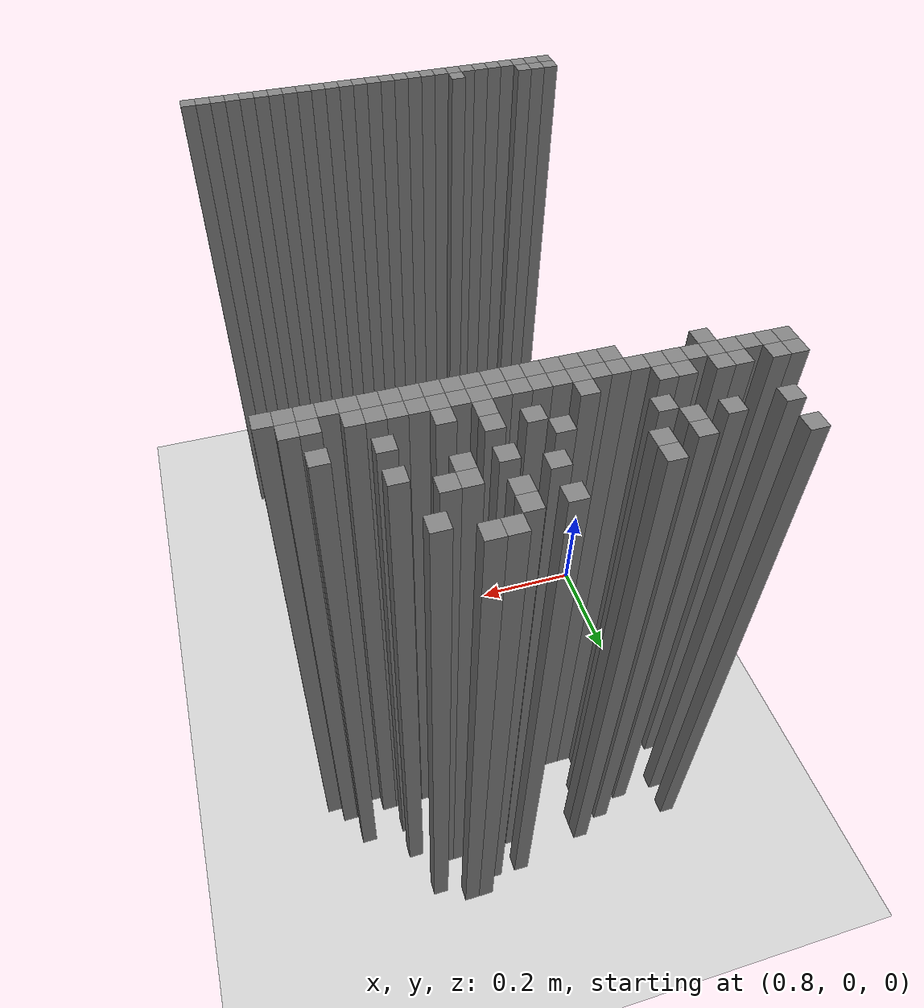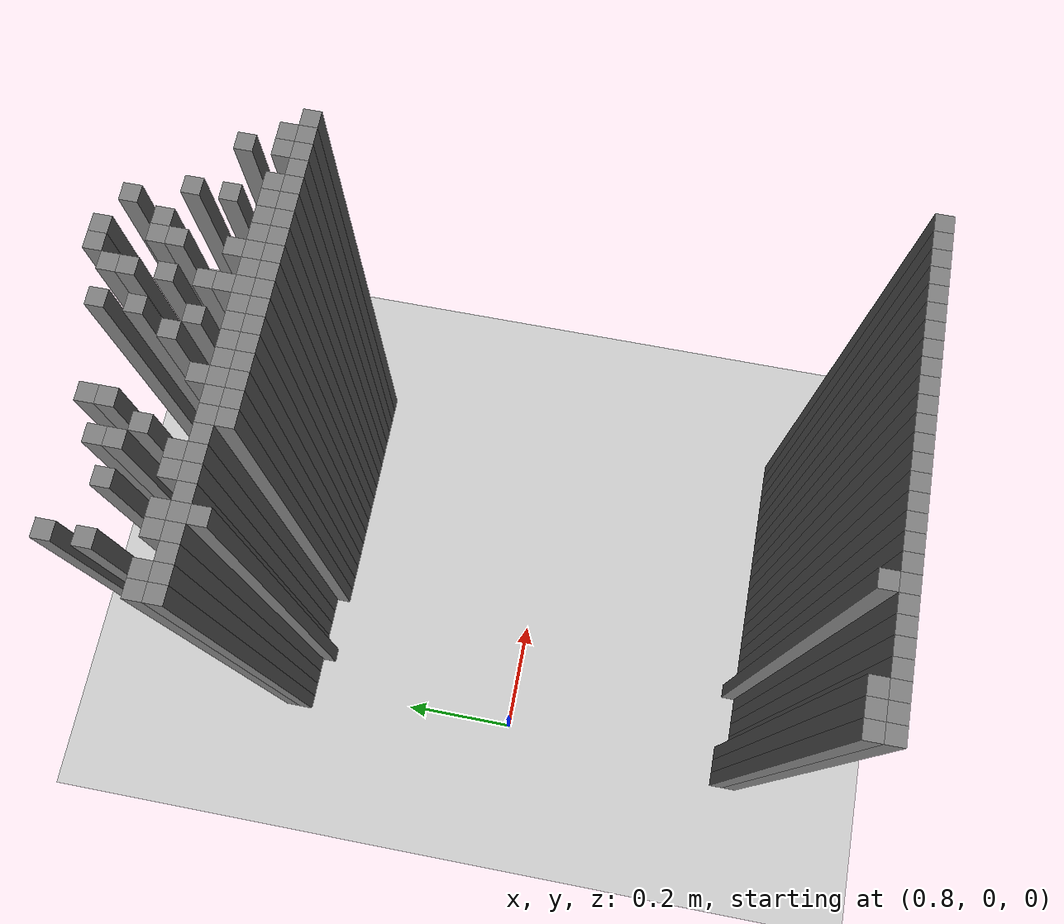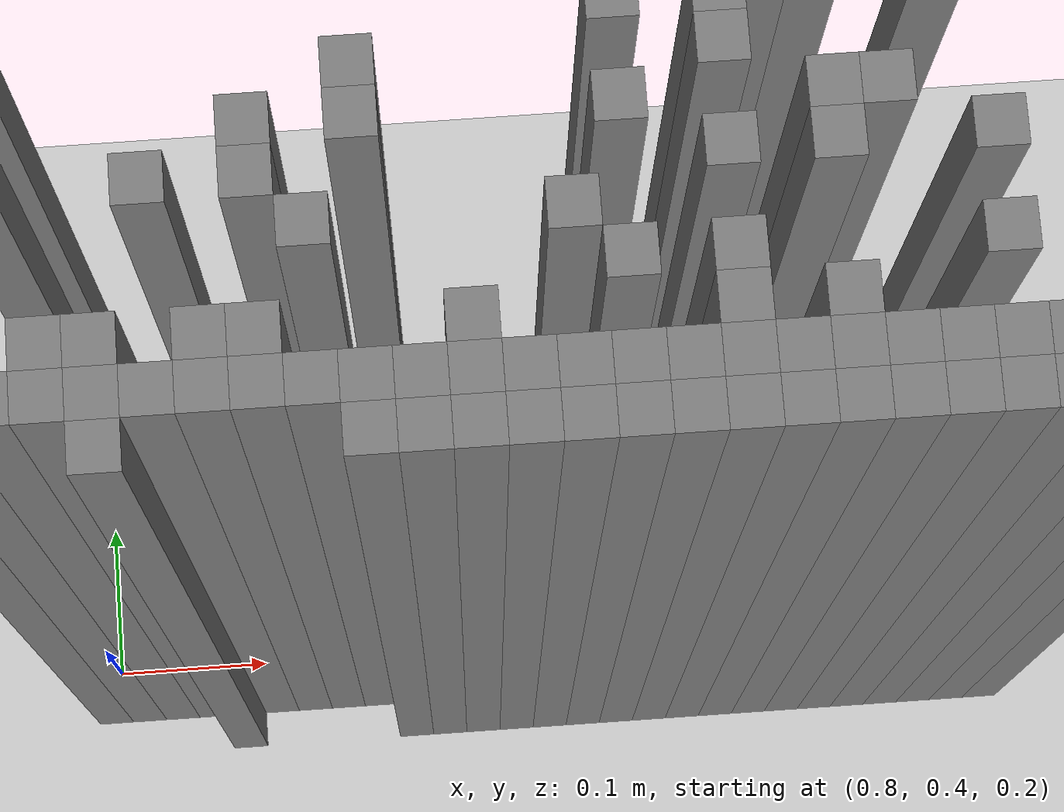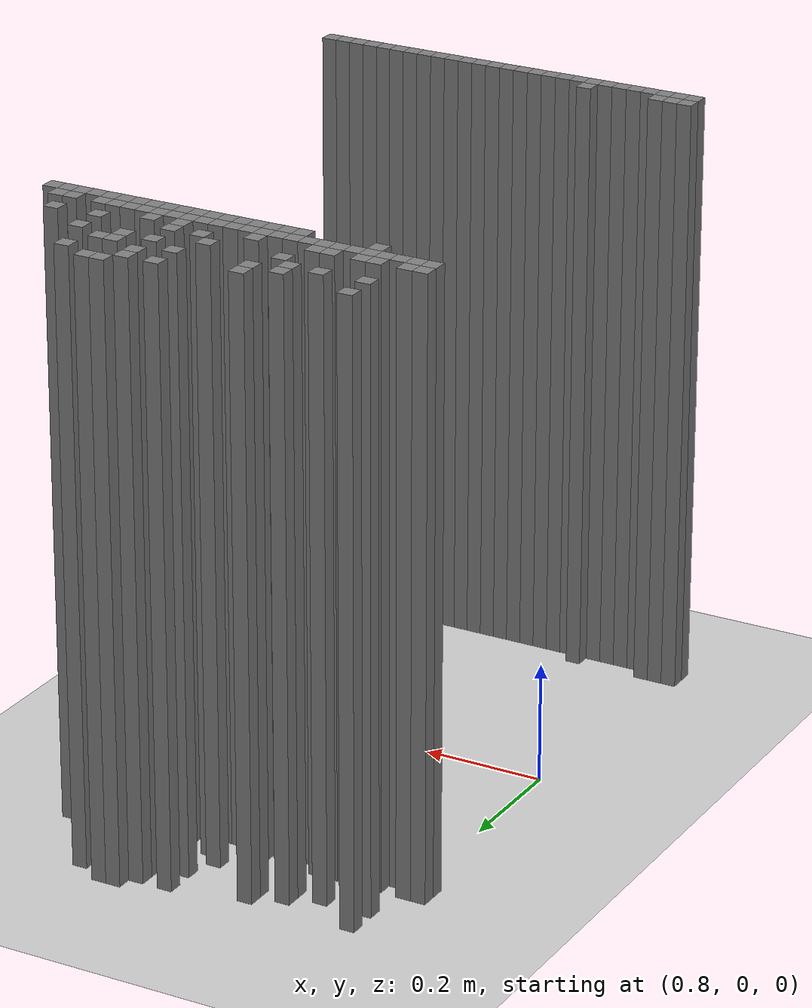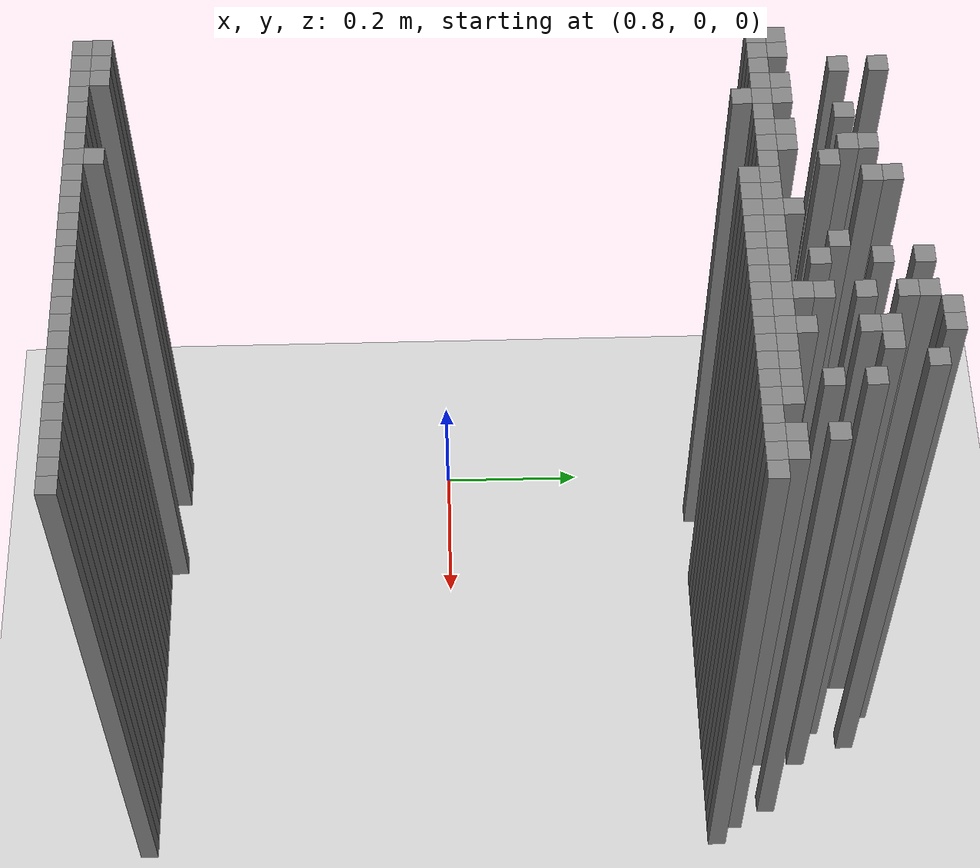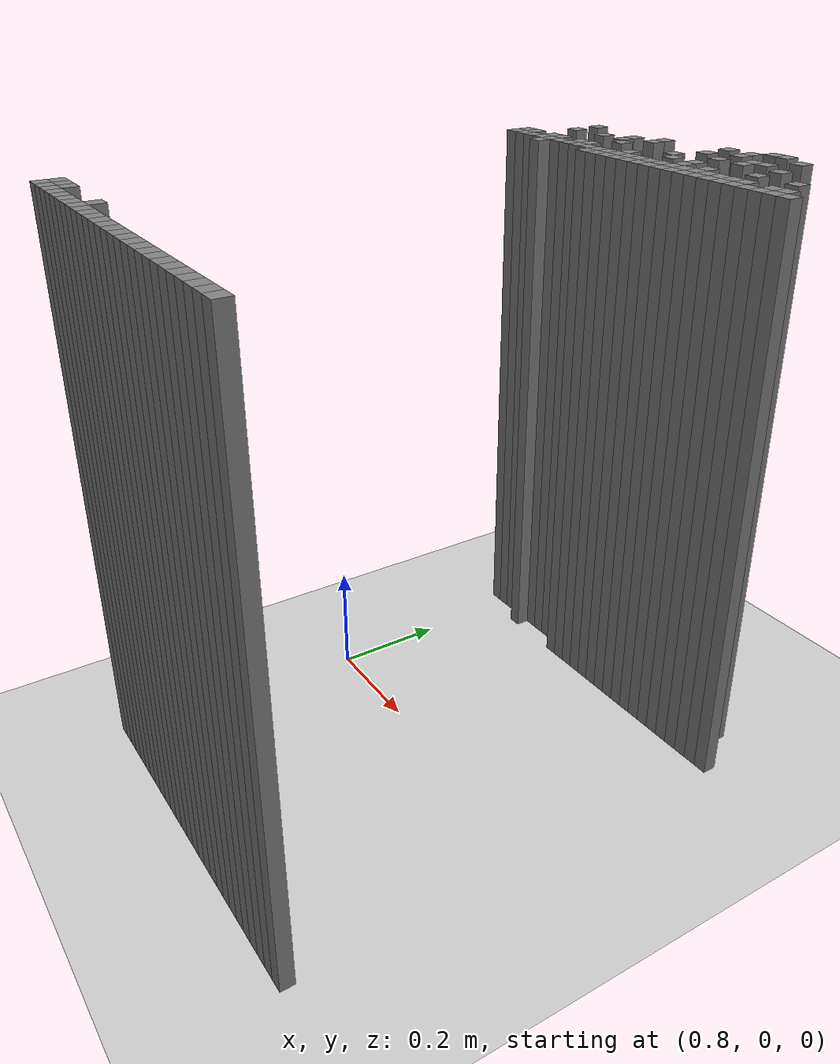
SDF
<sdf version="1.6">
 <world name="map_world">
  <include><uri>model://ground_plane</uri></include>
  <include><uri>model://sun</uri></include>
  <model name="obs_141_25">
   <static>true</static>
   <link name="link">
    <collision name="collision"><geometry><box><size>0.025 0.025 1.0</size></box></geometry></collision>
    <visual name="visual">
     <geometry><box><size>0.025 0.025 1.0</size></box></geometry>
     <material><ambient>0.5 0.5 0.5 1</ambient></material>
    </visual>
   </link>
   <pose>1.1987650000000003 0.6059290000000002 0.5 0 0 0</pose>
  </model>
  <model name="obs_142_25">
   <static>true</static>
   <link name="link">
    <collision name="collision"><geometry><box><size>0.025 0.025 1.0</size></box></geometry></collision>
    <visual name="visual">
     <geometry><box><size>0.025 0.025 1.0</size></box></geometry>
     <material><ambient>0.5 0.5 0.5 1</ambient></material>
    </visual>
   </link>
   <pose>1.2237650000000002 0.6059290000000002 0.5 0 0 0</pose>
  </model>
  <model name="obs_138_26">
   <static>true</static>
   <link name="link">
    <collision name="collision"><geometry><box><size>0.025 0.025 1.0</size></box></geometry></collision>
    <visual name="visual">
     <geometry><box><size>0.025 0.025 1.0</size></box></geometry>
     <material><ambient>0.5 0.5 0.5 1</ambient></material>
    </visual>
   </link>
   <pose>1.1237650000000001 0.5809290000000003 0.5 0 0 0</pose>
  </model>
  <model name="obs_140_26">
   <static>true</static>
   <link name="link">
    <collision name="collision"><geometry><box><size>0.025 0.025 1.0</size></box></geometry></collision>
    <visual name="visual">
     <geometry><box><size>0.025 0.025 1.0</size></box></geometry>
     <material><ambient>0.5 0.5 0.5 1</ambient></material>
    </visual>
   </link>
   <pose>1.173765 0.5809290000000003 0.5 0 0 0</pose>
  </model>
  <model name="obs_144_26">
   <static>true</static>
   <link name="link">
    <collision name="collision"><geometry><box><size>0.025 0.025 1.0</size></box></geometry></collision>
    <visual name="visual">
     <geometry><box><size>0.025 0.025 1.0</size></box></geometry>
     <material><ambient>0.5 0.5 0.5 1</ambient></material>
    </visual>
   </link>
   <pose>1.273765 0.5809290000000003 0.5 0 0 0</pose>
  </model>
  <model name="obs_126_27">
   <static>true</static>
   <link name="link">
    <collision name="collision"><geometry><box><size>0.025 0.025 1.0</size></box></geometry></collision>
    <visual name="visual">
     <geometry><box><size>0.025 0.025 1.0</size></box></geometry>
     <material><ambient>0.5 0.5 0.5 1</ambient></material>
    </visual>
   </link>
   <pose>0.8237650000000003 0.5559290000000003 0.5 0 0 0</pose>
  </model>
  <model name="obs_133_27">
   <static>true</static>
   <link name="link">
    <collision name="collision"><geometry><box><size>0.025 0.025 1.0</size></box></geometry></collision>
    <visual name="visual">
     <geometry><box><size>0.025 0.025 1.0</size></box></geometry>
     <material><ambient>0.5 0.5 0.5 1</ambient></material>
    </visual>
   </link>
   <pose>0.9987650000000001 0.5559290000000003 0.5 0 0 0</pose>
  </model>
  <model name="obs_140_27">
   <static>true</static>
   <link name="link">
    <collision name="collision"><geometry><box><size>0.025 0.025 1.0</size></box></geometry></collision>
    <visual name="visual">
     <geometry><box><size>0.025 0.025 1.0</size></box></geometry>
     <material><ambient>0.5 0.5 0.5 1</ambient></material>
    </visual>
   </link>
   <pose>1.173765 0.5559290000000003 0.5 0 0 0</pose>
  </model>
  <model name="obs_131_28">
   <static>true</static>
   <link name="link">
    <collision name="collision"><geometry><box><size>0.025 0.025 1.0</size></box></geometry></collision>
    <visual name="visual">
     <geometry><box><size>0.025 0.025 1.0</size></box></geometry>
     <material><ambient>0.5 0.5 0.5 1</ambient></material>
    </visual>
   </link>
   <pose>0.9487650000000003 0.5309290000000004 0.5 0 0 0</pose>
  </model>
  <model name="obs_133_28">
   <static>true</static>
   <link name="link">
    <collision name="collision"><geometry><box><size>0.025 0.025 1.0</size></box></geometry></collision>
    <visual name="visual">
     <geometry><box><size>0.025 0.025 1.0</size></box></geometry>
     <material><ambient>0.5 0.5 0.5 1</ambient></material>
    </visual>
   </link>
   <pose>0.9987650000000001 0.5309290000000004 0.5 0 0 0</pose>
  </model>
  <model name="obs_138_28">
   <static>true</static>
   <link name="link">
    <collision name="collision"><geometry><box><size>0.025 0.025 1.0</size></box></geometry></collision>
    <visual name="visual">
     <geometry><box><size>0.025 0.025 1.0</size></box></geometry>
     <material><ambient>0.5 0.5 0.5 1</ambient></material>
    </visual>
   </link>
   <pose>1.1237650000000001 0.5309290000000004 0.5 0 0 0</pose>
  </model>
  <model name="obs_142_28">
   <static>true</static>
   <link name="link">
    <collision name="collision"><geometry><box><size>0.025 0.025 1.0</size></box></geometry></collision>
    <visual name="visual">
     <geometry><box><size>0.025 0.025 1.0</size></box></geometry>
     <material><ambient>0.5 0.5 0.5 1</ambient></material>
    </visual>
   </link>
   <pose>1.2237650000000002 0.5309290000000004 0.5 0 0 0</pose>
  </model>
  <model name="obs_143_28">
   <static>true</static>
   <link name="link">
    <collision name="collision"><geometry><box><size>0.025 0.025 1.0</size></box></geometry></collision>
    <visual name="visual">
     <geometry><box><size>0.025 0.025 1.0</size></box></geometry>
     <material><ambient>0.5 0.5 0.5 1</ambient></material>
    </visual>
   </link>
   <pose>1.2487650000000001 0.5309290000000004 0.5 0 0 0</pose>
  </model>
  <model name="obs_126_29">
   <static>true</static>
   <link name="link">
    <collision name="collision"><geometry><box><size>0.025 0.025 1.0</size></box></geometry></collision>
    <visual name="visual">
     <geometry><box><size>0.025 0.025 1.0</size></box></geometry>
     <material><ambient>0.5 0.5 0.5 1</ambient></material>
    </visual>
   </link>
   <pose>0.8237650000000003 0.5059290000000001 0.5 0 0 0</pose>
  </model>
  <model name="obs_129_29">
   <static>true</static>
   <link name="link">
    <collision name="collision"><geometry><box><size>0.025 0.025 1.0</size></box></geometry></collision>
    <visual name="visual">
     <geometry><box><size>0.025 0.025 1.0</size></box></geometry>
     <material><ambient>0.5 0.5 0.5 1</ambient></material>
    </visual>
   </link>
   <pose>0.898765 0.5059290000000001 0.5 0 0 0</pose>
  </model>
  <model name="obs_131_29">
   <static>true</static>
   <link name="link">
    <collision name="collision"><geometry><box><size>0.025 0.025 1.0</size></box></geometry></collision>
    <visual name="visual">
     <geometry><box><size>0.025 0.025 1.0</size></box></geometry>
     <material><ambient>0.5 0.5 0.5 1</ambient></material>
    </visual>
   </link>
   <pose>0.9487650000000003 0.5059290000000001 0.5 0 0 0</pose>
  </model>
  <model name="obs_140_29">
   <static>true</static>
   <link name="link">
    <collision name="collision"><geometry><box><size>0.025 0.025 1.0</size></box></geometry></collision>
    <visual name="visual">
     <geometry><box><size>0.025 0.025 1.0</size></box></geometry>
     <material><ambient>0.5 0.5 0.5 1</ambient></material>
    </visual>
   </link>
   <pose>1.173765 0.5059290000000001 0.5 0 0 0</pose>
  </model>
  <model name="obs_142_29">
   <static>true</static>
   <link name="link">
    <collision name="collision"><geometry><box><size>0.025 0.025 1.0</size></box></geometry></collision>
    <visual name="visual">
     <geometry><box><size>0.025 0.025 1.0</size></box></geometry>
     <material><ambient>0.5 0.5 0.5 1</ambient></material>
    </visual>
   </link>
   <pose>1.2237650000000002 0.5059290000000001 0.5 0 0 0</pose>
  </model>
  <model name="obs_145_29">
   <static>true</static>
   <link name="link">
    <collision name="collision"><geometry><box><size>0.025 0.025 1.0</size></box></geometry></collision>
    <visual name="visual">
     <geometry><box><size>0.025 0.025 1.0</size></box></geometry>
     <material><ambient>0.5 0.5 0.5 1</ambient></material>
    </visual>
   </link>
   <pose>1.298765 0.5059290000000001 0.5 0 0 0</pose>
  </model>
  <model name="obs_132_30">
   <static>true</static>
   <link name="link">
    <collision name="collision"><geometry><box><size>0.025 0.025 1.0</size></box></geometry></collision>
    <visual name="visual">
     <geometry><box><size>0.025 0.025 1.0</size></box></geometry>
     <material><ambient>0.5 0.5 0.5 1</ambient></material>
    </visual>
   </link>
   <pose>0.9737650000000002 0.48092900000000016 0.5 0 0 0</pose>
  </model>
  <model name="obs_137_30">
   <static>true</static>
   <link name="link">
    <collision name="collision"><geometry><box><size>0.025 0.025 1.0</size></box></geometry></collision>
    <visual name="visual">
     <geometry><box><size>0.025 0.025 1.0</size></box></geometry>
     <material><ambient>0.5 0.5 0.5 1</ambient></material>
    </visual>
   </link>
   <pose>1.0987650000000002 0.48092900000000016 0.5 0 0 0</pose>
  </model>
  <model name="obs_138_31">
   <static>true</static>
   <link name="link">
    <collision name="collision"><geometry><box><size>0.025 0.025 1.0</size></box></geometry></collision>
    <visual name="visual">
     <geometry><box><size>0.025 0.025 1.0</size></box></geometry>
     <material><ambient>0.5 0.5 0.5 1</ambient></material>
    </visual>
   </link>
   <pose>1.1237650000000001 0.45592900000000025 0.5 0 0 0</pose>
  </model>
  <model name="obs_140_31">
   <static>true</static>
   <link name="link">
    <collision name="collision"><geometry><box><size>0.025 0.025 1.0</size></box></geometry></collision>
    <visual name="visual">
     <geometry><box><size>0.025 0.025 1.0</size></box></geometry>
     <material><ambient>0.5 0.5 0.5 1</ambient></material>
    </visual>
   </link>
   <pose>1.173765 0.45592900000000025 0.5 0 0 0</pose>
  </model>
  <model name="obs_145_31">
   <static>true</static>
   <link name="link">
    <collision name="collision"><geometry><box><size>0.025 0.025 1.0</size></box></geometry></collision>
    <visual name="visual">
     <geometry><box><size>0.025 0.025 1.0</size></box></geometry>
     <material><ambient>0.5 0.5 0.5 1</ambient></material>
    </visual>
   </link>
   <pose>1.298765 0.45592900000000025 0.5 0 0 0</pose>
  </model>
  <model name="obs_148_31">
   <static>true</static>
   <link name="link">
    <collision name="collision"><geometry><box><size>0.025 0.025 1.0</size></box></geometry></collision>
    <visual name="visual">
     <geometry><box><size>0.025 0.025 1.0</size></box></geometry>
     <material><ambient>0.5 0.5 0.5 1</ambient></material>
    </visual>
   </link>
   <pose>1.3737650000000001 0.45592900000000025 0.5 0 0 0</pose>
  </model>
  <model name="obs_124_32">
   <static>true</static>
   <link name="link">
    <collision name="collision"><geometry><box><size>0.025 0.025 1.0</size></box></geometry></collision>
    <visual name="visual">
     <geometry><box><size>0.025 0.025 1.0</size></box></geometry>
     <material><ambient>0.5 0.5 0.5 1</ambient></material>
    </visual>
   </link>
   <pose>0.773765 0.43092900000000034 0.5 0 0 0</pose>
  </model>
  <model name="obs_125_32">
   <static>true</static>
   <link name="link">
    <collision name="collision"><geometry><box><size>0.025 0.025 1.0</size></box></geometry></collision>
    <visual name="visual">
     <geometry><box><size>0.025 0.025 1.0</size></box></geometry>
     <material><ambient>0.5 0.5 0.5 1</ambient></material>
    </visual>
   </link>
   <pose>0.798765 0.43092900000000034 0.5 0 0 0</pose>
  </model>
  <model name="obs_127_32">
   <static>true</static>
   <link name="link">
    <collision name="collision"><geometry><box><size>0.025 0.025 1.0</size></box></geometry></collision>
    <visual name="visual">
     <geometry><box><size>0.025 0.025 1.0</size></box></geometry>
     <material><ambient>0.5 0.5 0.5 1</ambient></material>
    </visual>
   </link>
   <pose>0.8487650000000002 0.43092900000000034 0.5 0 0 0</pose>
  </model>
  <model name="obs_128_32">
   <static>true</static>
   <link name="link">
    <collision name="collision"><geometry><box><size>0.025 0.025 1.0</size></box></geometry></collision>
    <visual name="visual">
     <geometry><box><size>0.025 0.025 1.0</size></box></geometry>
     <material><ambient>0.5 0.5 0.5 1</ambient></material>
    </visual>
   </link>
   <pose>0.8737650000000001 0.43092900000000034 0.5 0 0 0</pose>
  </model>
  <model name="obs_130_32">
   <static>true</static>
   <link name="link">
    <collision name="collision"><geometry><box><size>0.025 0.025 1.0</size></box></geometry></collision>
    <visual name="visual">
     <geometry><box><size>0.025 0.025 1.0</size></box></geometry>
     <material><ambient>0.5 0.5 0.5 1</ambient></material>
    </visual>
   </link>
   <pose>0.923765 0.43092900000000034 0.5 0 0 0</pose>
  </model>
  <model name="obs_131_32">
   <static>true</static>
   <link name="link">
    <collision name="collision"><geometry><box><size>0.025 0.025 1.0</size></box></geometry></collision>
    <visual name="visual">
     <geometry><box><size>0.025 0.025 1.0</size></box></geometry>
     <material><ambient>0.5 0.5 0.5 1</ambient></material>
    </visual>
   </link>
   <pose>0.9487650000000003 0.43092900000000034 0.5 0 0 0</pose>
  </model>
  <model name="obs_135_32">
   <static>true</static>
   <link name="link">
    <collision name="collision"><geometry><box><size>0.025 0.025 1.0</size></box></geometry></collision>
    <visual name="visual">
     <geometry><box><size>0.025 0.025 1.0</size></box></geometry>
     <material><ambient>0.5 0.5 0.5 1</ambient></material>
    </visual>
   </link>
   <pose>1.048765 0.43092900000000034 0.5 0 0 0</pose>
  </model>
  <model name="obs_140_32">
   <static>true</static>
   <link name="link">
    <collision name="collision"><geometry><box><size>0.025 0.025 1.0</size></box></geometry></collision>
    <visual name="visual">
     <geometry><box><size>0.025 0.025 1.0</size></box></geometry>
     <material><ambient>0.5 0.5 0.5 1</ambient></material>
    </visual>
   </link>
   <pose>1.173765 0.43092900000000034 0.5 0 0 0</pose>
  </model>
  <model name="obs_142_32">
   <static>true</static>
   <link name="link">
    <collision name="collision"><geometry><box><size>0.025 0.025 1.0</size></box></geometry></collision>
    <visual name="visual">
     <geometry><box><size>0.025 0.025 1.0</size></box></geometry>
     <material><ambient>0.5 0.5 0.5 1</ambient></material>
    </visual>
   </link>
   <pose>1.2237650000000002 0.43092900000000034 0.5 0 0 0</pose>
  </model>
  <model name="obs_124_33">
   <static>true</static>
   <link name="link">
    <collision name="collision"><geometry><box><size>0.025 0.025 1.0</size></box></geometry></collision>
    <visual name="visual">
     <geometry><box><size>0.025 0.025 1.0</size></box></geometry>
     <material><ambient>0.5 0.5 0.5 1</ambient></material>
    </visual>
   </link>
   <pose>0.773765 0.40592900000000043 0.5 0 0 0</pose>
  </model>
  <model name="obs_125_33">
   <static>true</static>
   <link name="link">
    <collision name="collision"><geometry><box><size>0.025 0.025 1.0</size></box></geometry></collision>
    <visual name="visual">
     <geometry><box><size>0.025 0.025 1.0</size></box></geometry>
     <material><ambient>0.5 0.5 0.5 1</ambient></material>
    </visual>
   </link>
   <pose>0.798765 0.40592900000000043 0.5 0 0 0</pose>
  </model>
  <model name="obs_126_33">
   <static>true</static>
   <link name="link">
    <collision name="collision"><geometry><box><size>0.025 0.025 1.0</size></box></geometry></collision>
    <visual name="visual">
     <geometry><box><size>0.025 0.025 1.0</size></box></geometry>
     <material><ambient>0.5 0.5 0.5 1</ambient></material>
    </visual>
   </link>
   <pose>0.8237650000000003 0.40592900000000043 0.5 0 0 0</pose>
  </model>
  <model name="obs_127_33">
   <static>true</static>
   <link name="link">
    <collision name="collision"><geometry><box><size>0.025 0.025 1.0</size></box></geometry></collision>
    <visual name="visual">
     <geometry><box><size>0.025 0.025 1.0</size></box></geometry>
     <material><ambient>0.5 0.5 0.5 1</ambient></material>
    </visual>
   </link>
   <pose>0.8487650000000002 0.40592900000000043 0.5 0 0 0</pose>
  </model>
  <model name="obs_128_33">
   <static>true</static>
   <link name="link">
    <collision name="collision"><geometry><box><size>0.025 0.025 1.0</size></box></geometry></collision>
    <visual name="visual">
     <geometry><box><size>0.025 0.025 1.0</size></box></geometry>
     <material><ambient>0.5 0.5 0.5 1</ambient></material>
    </visual>
   </link>
   <pose>0.8737650000000001 0.40592900000000043 0.5 0 0 0</pose>
  </model>
  <model name="obs_129_33">
   <static>true</static>
   <link name="link">
    <collision name="collision"><geometry><box><size>0.025 0.025 1.0</size></box></geometry></collision>
    <visual name="visual">
     <geometry><box><size>0.025 0.025 1.0</size></box></geometry>
     <material><ambient>0.5 0.5 0.5 1</ambient></material>
    </visual>
   </link>
   <pose>0.898765 0.40592900000000043 0.5 0 0 0</pose>
  </model>
  <model name="obs_130_33">
   <static>true</static>
   <link name="link">
    <collision name="collision"><geometry><box><size>0.025 0.025 1.0</size></box></geometry></collision>
    <visual name="visual">
     <geometry><box><size>0.025 0.025 1.0</size></box></geometry>
     <material><ambient>0.5 0.5 0.5 1</ambient></material>
    </visual>
   </link>
   <pose>0.923765 0.40592900000000043 0.5 0 0 0</pose>
  </model>
  <model name="obs_131_33">
   <static>true</static>
   <link name="link">
    <collision name="collision"><geometry><box><size>0.025 0.025 1.0</size></box></geometry></collision>
    <visual name="visual">
     <geometry><box><size>0.025 0.025 1.0</size></box></geometry>
     <material><ambient>0.5 0.5 0.5 1</ambient></material>
    </visual>
   </link>
   <pose>0.9487650000000003 0.40592900000000043 0.5 0 0 0</pose>
  </model>
  <model name="obs_132_33">
   <static>true</static>
   <link name="link">
    <collision name="collision"><geometry><box><size>0.025 0.025 1.0</size></box></geometry></collision>
    <visual name="visual">
     <geometry><box><size>0.025 0.025 1.0</size></box></geometry>
     <material><ambient>0.5 0.5 0.5 1</ambient></material>
    </visual>
   </link>
   <pose>0.9737650000000002 0.40592900000000043 0.5 0 0 0</pose>
  </model>
  <model name="obs_133_33">
   <static>true</static>
   <link name="link">
    <collision name="collision"><geometry><box><size>0.025 0.025 1.0</size></box></geometry></collision>
    <visual name="visual">
     <geometry><box><size>0.025 0.025 1.0</size></box></geometry>
     <material><ambient>0.5 0.5 0.5 1</ambient></material>
    </visual>
   </link>
   <pose>0.9987650000000001 0.40592900000000043 0.5 0 0 0</pose>
  </model>
  <model name="obs_134_33">
   <static>true</static>
   <link name="link">
    <collision name="collision"><geometry><box><size>0.025 0.025 1.0</size></box></geometry></collision>
    <visual name="visual">
     <geometry><box><size>0.025 0.025 1.0</size></box></geometry>
     <material><ambient>0.5 0.5 0.5 1</ambient></material>
    </visual>
   </link>
   <pose>1.023765 0.40592900000000043 0.5 0 0 0</pose>
  </model>
  <model name="obs_135_33">
   <static>true</static>
   <link name="link">
    <collision name="collision"><geometry><box><size>0.025 0.025 1.0</size></box></geometry></collision>
    <visual name="visual">
     <geometry><box><size>0.025 0.025 1.0</size></box></geometry>
     <material><ambient>0.5 0.5 0.5 1</ambient></material>
    </visual>
   </link>
   <pose>1.048765 0.40592900000000043 0.5 0 0 0</pose>
  </model>
  <model name="obs_136_33">
   <static>true</static>
   <link name="link">
    <collision name="collision"><geometry><box><size>0.025 0.025 1.0</size></box></geometry></collision>
    <visual name="visual">
     <geometry><box><size>0.025 0.025 1.0</size></box></geometry>
     <material><ambient>0.5 0.5 0.5 1</ambient></material>
    </visual>
   </link>
   <pose>1.0737650000000003 0.40592900000000043 0.5 0 0 0</pose>
  </model>
  <model name="obs_137_33">
   <static>true</static>
   <link name="link">
    <collision name="collision"><geometry><box><size>0.025 0.025 1.0</size></box></geometry></collision>
    <visual name="visual">
     <geometry><box><size>0.025 0.025 1.0</size></box></geometry>
     <material><ambient>0.5 0.5 0.5 1</ambient></material>
    </visual>
   </link>
   <pose>1.0987650000000002 0.40592900000000043 0.5 0 0 0</pose>
  </model>
  <model name="obs_138_33">
   <static>true</static>
   <link name="link">
    <collision name="collision"><geometry><box><size>0.025 0.025 1.0</size></box></geometry></collision>
    <visual name="visual">
     <geometry><box><size>0.025 0.025 1.0</size></box></geometry>
     <material><ambient>0.5 0.5 0.5 1</ambient></material>
    </visual>
   </link>
   <pose>1.1237650000000001 0.40592900000000043 0.5 0 0 0</pose>
  </model>
  <model name="obs_139_33">
   <static>true</static>
   <link name="link">
    <collision name="collision"><geometry><box><size>0.025 0.025 1.0</size></box></geometry></collision>
    <visual name="visual">
     <geometry><box><size>0.025 0.025 1.0</size></box></geometry>
     <material><ambient>0.5 0.5 0.5 1</ambient></material>
    </visual>
   </link>
   <pose>1.148765 0.40592900000000043 0.5 0 0 0</pose>
  </model>
  <model name="obs_140_33">
   <static>true</static>
   <link name="link">
    <collision name="collision"><geometry><box><size>0.025 0.025 1.0</size></box></geometry></collision>
    <visual name="visual">
     <geometry><box><size>0.025 0.025 1.0</size></box></geometry>
     <material><ambient>0.5 0.5 0.5 1</ambient></material>
    </visual>
   </link>
   <pose>1.173765 0.40592900000000043 0.5 0 0 0</pose>
  </model>
  <model name="obs_141_33">
   <static>true</static>
   <link name="link">
    <collision name="collision"><geometry><box><size>0.025 0.025 1.0</size></box></geometry></collision>
    <visual name="visual">
     <geometry><box><size>0.025 0.025 1.0</size></box></geometry>
     <material><ambient>0.5 0.5 0.5 1</ambient></material>
    </visual>
   </link>
   <pose>1.1987650000000003 0.40592900000000043 0.5 0 0 0</pose>
  </model>
  <model name="obs_142_33">
   <static>true</static>
   <link name="link">
    <collision name="collision"><geometry><box><size>0.025 0.025 1.0</size></box></geometry></collision>
    <visual name="visual">
     <geometry><box><size>0.025 0.025 1.0</size></box></geometry>
     <material><ambient>0.5 0.5 0.5 1</ambient></material>
    </visual>
   </link>
   <pose>1.2237650000000002 0.40592900000000043 0.5 0 0 0</pose>
  </model>
  <model name="obs_143_33">
   <static>true</static>
   <link name="link">
    <collision name="collision"><geometry><box><size>0.025 0.025 1.0</size></box></geometry></collision>
    <visual name="visual">
     <geometry><box><size>0.025 0.025 1.0</size></box></geometry>
     <material><ambient>0.5 0.5 0.5 1</ambient></material>
    </visual>
   </link>
   <pose>1.2487650000000001 0.40592900000000043 0.5 0 0 0</pose>
  </model>
  <model name="obs_144_33">
   <static>true</static>
   <link name="link">
    <collision name="collision"><geometry><box><size>0.025 0.025 1.0</size></box></geometry></collision>
    <visual name="visual">
     <geometry><box><size>0.025 0.025 1.0</size></box></geometry>
     <material><ambient>0.5 0.5 0.5 1</ambient></material>
    </visual>
   </link>
   <pose>1.273765 0.40592900000000043 0.5 0 0 0</pose>
  </model>
  <model name="obs_145_33">
   <static>true</static>
   <link name="link">
    <collision name="collision"><geometry><box><size>0.025 0.025 1.0</size></box></geometry></collision>
    <visual name="visual">
     <geometry><box><size>0.025 0.025 1.0</size></box></geometry>
     <material><ambient>0.5 0.5 0.5 1</ambient></material>
    </visual>
   </link>
   <pose>1.298765 0.40592900000000043 0.5 0 0 0</pose>
  </model>
  <model name="obs_146_33">
   <static>true</static>
   <link name="link">
    <collision name="collision"><geometry><box><size>0.025 0.025 1.0</size></box></geometry></collision>
    <visual name="visual">
     <geometry><box><size>0.025 0.025 1.0</size></box></geometry>
     <material><ambient>0.5 0.5 0.5 1</ambient></material>
    </visual>
   </link>
   <pose>1.3237650000000003 0.40592900000000043 0.5 0 0 0</pose>
  </model>
  <model name="obs_148_33">
   <static>true</static>
   <link name="link">
    <collision name="collision"><geometry><box><size>0.025 0.025 1.0</size></box></geometry></collision>
    <visual name="visual">
     <geometry><box><size>0.025 0.025 1.0</size></box></geometry>
     <material><ambient>0.5 0.5 0.5 1</ambient></material>
    </visual>
   </link>
   <pose>1.3737650000000001 0.40592900000000043 0.5 0 0 0</pose>
  </model>
  <model name="obs_149_33">
   <static>true</static>
   <link name="link">
    <collision name="collision"><geometry><box><size>0.025 0.025 1.0</size></box></geometry></collision>
    <visual name="visual">
     <geometry><box><size>0.025 0.025 1.0</size></box></geometry>
     <material><ambient>0.5 0.5 0.5 1</ambient></material>
    </visual>
   </link>
   <pose>1.398765 0.40592900000000043 0.5 0 0 0</pose>
  </model>
  <model name="obs_128_34">
   <static>true</static>
   <link name="link">
    <collision name="collision"><geometry><box><size>0.025 0.025 1.0</size></box></geometry></collision>
    <visual name="visual">
     <geometry><box><size>0.025 0.025 1.0</size></box></geometry>
     <material><ambient>0.5 0.5 0.5 1</ambient></material>
    </visual>
   </link>
   <pose>0.8737650000000001 0.3809290000000001 0.5 0 0 0</pose>
  </model>
  <model name="obs_133_34">
   <static>true</static>
   <link name="link">
    <collision name="collision"><geometry><box><size>0.025 0.025 1.0</size></box></geometry></collision>
    <visual name="visual">
     <geometry><box><size>0.025 0.025 1.0</size></box></geometry>
     <material><ambient>0.5 0.5 0.5 1</ambient></material>
    </visual>
   </link>
   <pose>0.9987650000000001 0.3809290000000001 0.5 0 0 0</pose>
  </model>
  <model name="obs_134_34">
   <static>true</static>
   <link name="link">
    <collision name="collision"><geometry><box><size>0.025 0.025 1.0</size></box></geometry></collision>
    <visual name="visual">
     <geometry><box><size>0.025 0.025 1.0</size></box></geometry>
     <material><ambient>0.5 0.5 0.5 1</ambient></material>
    </visual>
   </link>
   <pose>1.023765 0.3809290000000001 0.5 0 0 0</pose>
  </model>
  <model name="obs_135_34">
   <static>true</static>
   <link name="link">
    <collision name="collision"><geometry><box><size>0.025 0.025 1.0</size></box></geometry></collision>
    <visual name="visual">
     <geometry><box><size>0.025 0.025 1.0</size></box></geometry>
     <material><ambient>0.5 0.5 0.5 1</ambient></material>
    </visual>
   </link>
   <pose>1.048765 0.3809290000000001 0.5 0 0 0</pose>
  </model>
  <model name="obs_136_34">
   <static>true</static>
   <link name="link">
    <collision name="collision"><geometry><box><size>0.025 0.025 1.0</size></box></geometry></collision>
    <visual name="visual">
     <geometry><box><size>0.025 0.025 1.0</size></box></geometry>
     <material><ambient>0.5 0.5 0.5 1</ambient></material>
    </visual>
   </link>
   <pose>1.0737650000000003 0.3809290000000001 0.5 0 0 0</pose>
  </model>
  <model name="obs_137_34">
   <static>true</static>
   <link name="link">
    <collision name="collision"><geometry><box><size>0.025 0.025 1.0</size></box></geometry></collision>
    <visual name="visual">
     <geometry><box><size>0.025 0.025 1.0</size></box></geometry>
     <material><ambient>0.5 0.5 0.5 1</ambient></material>
    </visual>
   </link>
   <pose>1.0987650000000002 0.3809290000000001 0.5 0 0 0</pose>
  </model>
  <model name="obs_138_34">
   <static>true</static>
   <link name="link">
    <collision name="collision"><geometry><box><size>0.025 0.025 1.0</size></box></geometry></collision>
    <visual name="visual">
     <geometry><box><size>0.025 0.025 1.0</size></box></geometry>
     <material><ambient>0.5 0.5 0.5 1</ambient></material>
    </visual>
   </link>
   <pose>1.1237650000000001 0.3809290000000001 0.5 0 0 0</pose>
  </model>
  <model name="obs_139_34">
   <static>true</static>
   <link name="link">
    <collision name="collision"><geometry><box><size>0.025 0.025 1.0</size></box></geometry></collision>
    <visual name="visual">
     <geometry><box><size>0.025 0.025 1.0</size></box></geometry>
     <material><ambient>0.5 0.5 0.5 1</ambient></material>
    </visual>
   </link>
   <pose>1.148765 0.3809290000000001 0.5 0 0 0</pose>
  </model>
  <model name="obs_140_34">
   <static>true</static>
   <link name="link">
    <collision name="collision"><geometry><box><size>0.025 0.025 1.0</size></box></geometry></collision>
    <visual name="visual">
     <geometry><box><size>0.025 0.025 1.0</size></box></geometry>
     <material><ambient>0.5 0.5 0.5 1</ambient></material>
    </visual>
   </link>
   <pose>1.173765 0.3809290000000001 0.5 0 0 0</pose>
  </model>
  <model name="obs_141_34">
   <static>true</static>
   <link name="link">
    <collision name="collision"><geometry><box><size>0.025 0.025 1.0</size></box></geometry></collision>
    <visual name="visual">
     <geometry><box><size>0.025 0.025 1.0</size></box></geometry>
     <material><ambient>0.5 0.5 0.5 1</ambient></material>
    </visual>
   </link>
   <pose>1.1987650000000003 0.3809290000000001 0.5 0 0 0</pose>
  </model>
  <model name="obs_142_34">
   <static>true</static>
   <link name="link">
    <collision name="collision"><geometry><box><size>0.025 0.025 1.0</size></box></geometry></collision>
    <visual name="visual">
     <geometry><box><size>0.025 0.025 1.0</size></box></geometry>
     <material><ambient>0.5 0.5 0.5 1</ambient></material>
    </visual>
   </link>
   <pose>1.2237650000000002 0.3809290000000001 0.5 0 0 0</pose>
  </model>
  <model name="obs_143_34">
   <static>true</static>
   <link name="link">
    <collision name="collision"><geometry><box><size>0.025 0.025 1.0</size></box></geometry></collision>
    <visual name="visual">
     <geometry><box><size>0.025 0.025 1.0</size></box></geometry>
     <material><ambient>0.5 0.5 0.5 1</ambient></material>
    </visual>
   </link>
   <pose>1.2487650000000001 0.3809290000000001 0.5 0 0 0</pose>
  </model>
  <model name="obs_144_34">
   <static>true</static>
   <link name="link">
    <collision name="collision"><geometry><box><size>0.025 0.025 1.0</size></box></geometry></collision>
    <visual name="visual">
     <geometry><box><size>0.025 0.025 1.0</size></box></geometry>
     <material><ambient>0.5 0.5 0.5 1</ambient></material>
    </visual>
   </link>
   <pose>1.273765 0.3809290000000001 0.5 0 0 0</pose>
  </model>
  <model name="obs_145_34">
   <static>true</static>
   <link name="link">
    <collision name="collision"><geometry><box><size>0.025 0.025 1.0</size></box></geometry></collision>
    <visual name="visual">
     <geometry><box><size>0.025 0.025 1.0</size></box></geometry>
     <material><ambient>0.5 0.5 0.5 1</ambient></material>
    </visual>
   </link>
   <pose>1.298765 0.3809290000000001 0.5 0 0 0</pose>
  </model>
  <model name="obs_146_34">
   <static>true</static>
   <link name="link">
    <collision name="collision"><geometry><box><size>0.025 0.025 1.0</size></box></geometry></collision>
    <visual name="visual">
     <geometry><box><size>0.025 0.025 1.0</size></box></geometry>
     <material><ambient>0.5 0.5 0.5 1</ambient></material>
    </visual>
   </link>
   <pose>1.3237650000000003 0.3809290000000001 0.5 0 0 0</pose>
  </model>
  <model name="obs_147_34">
   <static>true</static>
   <link name="link">
    <collision name="collision"><geometry><box><size>0.025 0.025 1.0</size></box></geometry></collision>
    <visual name="visual">
     <geometry><box><size>0.025 0.025 1.0</size></box></geometry>
     <material><ambient>0.5 0.5 0.5 1</ambient></material>
    </visual>
   </link>
   <pose>1.3487650000000002 0.3809290000000001 0.5 0 0 0</pose>
  </model>
  <model name="obs_148_34">
   <static>true</static>
   <link name="link">
    <collision name="collision"><geometry><box><size>0.025 0.025 1.0</size></box></geometry></collision>
    <visual name="visual">
     <geometry><box><size>0.025 0.025 1.0</size></box></geometry>
     <material><ambient>0.5 0.5 0.5 1</ambient></material>
    </visual>
   </link>
   <pose>1.3737650000000001 0.3809290000000001 0.5 0 0 0</pose>
  </model>
  <model name="obs_149_34">
   <static>true</static>
   <link name="link">
    <collision name="collision"><geometry><box><size>0.025 0.025 1.0</size></box></geometry></collision>
    <visual name="visual">
     <geometry><box><size>0.025 0.025 1.0</size></box></geometry>
     <material><ambient>0.5 0.5 0.5 1</ambient></material>
    </visual>
   </link>
   <pose>1.398765 0.3809290000000001 0.5 0 0 0</pose>
  </model>
  <model name="obs_150_34">
   <static>true</static>
   <link name="link">
    <collision name="collision"><geometry><box><size>0.025 0.025 1.0</size></box></geometry></collision>
    <visual name="visual">
     <geometry><box><size>0.025 0.025 1.0</size></box></geometry>
     <material><ambient>0.5 0.5 0.5 1</ambient></material>
    </visual>
   </link>
   <pose>1.423765 0.3809290000000001 0.5 0 0 0</pose>
  </model>
  <model name="obs_124_66">
   <static>true</static>
   <link name="link">
    <collision name="collision"><geometry><box><size>0.025 0.025 1.0</size></box></geometry></collision>
    <visual name="visual">
     <geometry><box><size>0.025 0.025 1.0</size></box></geometry>
     <material><ambient>0.5 0.5 0.5 1</ambient></material>
    </visual>
   </link>
   <pose>0.773765 -0.41907099999999975 0.5 0 0 0</pose>
  </model>
  <model name="obs_125_66">
   <static>true</static>
   <link name="link">
    <collision name="collision"><geometry><box><size>0.025 0.025 1.0</size></box></geometry></collision>
    <visual name="visual">
     <geometry><box><size>0.025 0.025 1.0</size></box></geometry>
     <material><ambient>0.5 0.5 0.5 1</ambient></material>
    </visual>
   </link>
   <pose>0.798765 -0.41907099999999975 0.5 0 0 0</pose>
  </model>
  <model name="obs_126_66">
   <static>true</static>
   <link name="link">
    <collision name="collision"><geometry><box><size>0.025 0.025 1.0</size></box></geometry></collision>
    <visual name="visual">
     <geometry><box><size>0.025 0.025 1.0</size></box></geometry>
     <material><ambient>0.5 0.5 0.5 1</ambient></material>
    </visual>
   </link>
   <pose>0.8237650000000003 -0.41907099999999975 0.5 0 0 0</pose>
  </model>
  <model name="obs_131_66">
   <static>true</static>
   <link name="link">
    <collision name="collision"><geometry><box><size>0.025 0.025 1.0</size></box></geometry></collision>
    <visual name="visual">
     <geometry><box><size>0.025 0.025 1.0</size></box></geometry>
     <material><ambient>0.5 0.5 0.5 1</ambient></material>
    </visual>
   </link>
   <pose>0.9487650000000003 -0.41907099999999975 0.5 0 0 0</pose>
  </model>
  <model name="obs_124_67">
   <static>true</static>
   <link name="link">
    <collision name="collision"><geometry><box><size>0.025 0.025 1.0</size></box></geometry></collision>
    <visual name="visual">
     <geometry><box><size>0.025 0.025 1.0</size></box></geometry>
     <material><ambient>0.5 0.5 0.5 1</ambient></material>
    </visual>
   </link>
   <pose>0.773765 -0.4440709999999999 0.5 0 0 0</pose>
  </model>
  <model name="obs_125_67">
   <static>true</static>
   <link name="link">
    <collision name="collision"><geometry><box><size>0.025 0.025 1.0</size></box></geometry></collision>
    <visual name="visual">
     <geometry><box><size>0.025 0.025 1.0</size></box></geometry>
     <material><ambient>0.5 0.5 0.5 1</ambient></material>
    </visual>
   </link>
   <pose>0.798765 -0.4440709999999999 0.5 0 0 0</pose>
  </model>
  <model name="obs_126_67">
   <static>true</static>
   <link name="link">
    <collision name="collision"><geometry><box><size>0.025 0.025 1.0</size></box></geometry></collision>
    <visual name="visual">
     <geometry><box><size>0.025 0.025 1.0</size></box></geometry>
     <material><ambient>0.5 0.5 0.5 1</ambient></material>
    </visual>
   </link>
   <pose>0.8237650000000003 -0.4440709999999999 0.5 0 0 0</pose>
  </model>
  <model name="obs_127_67">
   <static>true</static>
   <link name="link">
    <collision name="collision"><geometry><box><size>0.025 0.025 1.0</size></box></geometry></collision>
    <visual name="visual">
     <geometry><box><size>0.025 0.025 1.0</size></box></geometry>
     <material><ambient>0.5 0.5 0.5 1</ambient></material>
    </visual>
   </link>
   <pose>0.8487650000000002 -0.4440709999999999 0.5 0 0 0</pose>
  </model>
  <model name="obs_128_67">
   <static>true</static>
   <link name="link">
    <collision name="collision"><geometry><box><size>0.025 0.025 1.0</size></box></geometry></collision>
    <visual name="visual">
     <geometry><box><size>0.025 0.025 1.0</size></box></geometry>
     <material><ambient>0.5 0.5 0.5 1</ambient></material>
    </visual>
   </link>
   <pose>0.8737650000000001 -0.4440709999999999 0.5 0 0 0</pose>
  </model>
  <model name="obs_129_67">
   <static>true</static>
   <link name="link">
    <collision name="collision"><geometry><box><size>0.025 0.025 1.0</size></box></geometry></collision>
    <visual name="visual">
     <geometry><box><size>0.025 0.025 1.0</size></box></geometry>
     <material><ambient>0.5 0.5 0.5 1</ambient></material>
    </visual>
   </link>
   <pose>0.898765 -0.4440709999999999 0.5 0 0 0</pose>
  </model>
  <model name="obs_130_67">
   <static>true</static>
   <link name="link">
    <collision name="collision"><geometry><box><size>0.025 0.025 1.0</size></box></geometry></collision>
    <visual name="visual">
     <geometry><box><size>0.025 0.025 1.0</size></box></geometry>
     <material><ambient>0.5 0.5 0.5 1</ambient></material>
    </visual>
   </link>
   <pose>0.923765 -0.4440709999999999 0.5 0 0 0</pose>
  </model>
  <model name="obs_131_67">
   <static>true</static>
   <link name="link">
    <collision name="collision"><geometry><box><size>0.025 0.025 1.0</size></box></geometry></collision>
    <visual name="visual">
     <geometry><box><size>0.025 0.025 1.0</size></box></geometry>
     <material><ambient>0.5 0.5 0.5 1</ambient></material>
    </visual>
   </link>
   <pose>0.9487650000000003 -0.4440709999999999 0.5 0 0 0</pose>
  </model>
  <model name="obs_132_67">
   <static>true</static>
   <link name="link">
    <collision name="collision"><geometry><box><size>0.025 0.025 1.0</size></box></geometry></collision>
    <visual name="visual">
     <geometry><box><size>0.025 0.025 1.0</size></box></geometry>
     <material><ambient>0.5 0.5 0.5 1</ambient></material>
    </visual>
   </link>
   <pose>0.9737650000000002 -0.4440709999999999 0.5 0 0 0</pose>
  </model>
  <model name="obs_133_67">
   <static>true</static>
   <link name="link">
    <collision name="collision"><geometry><box><size>0.025 0.025 1.0</size></box></geometry></collision>
    <visual name="visual">
     <geometry><box><size>0.025 0.025 1.0</size></box></geometry>
     <material><ambient>0.5 0.5 0.5 1</ambient></material>
    </visual>
   </link>
   <pose>0.9987650000000001 -0.4440709999999999 0.5 0 0 0</pose>
  </model>
  <model name="obs_134_67">
   <static>true</static>
   <link name="link">
    <collision name="collision"><geometry><box><size>0.025 0.025 1.0</size></box></geometry></collision>
    <visual name="visual">
     <geometry><box><size>0.025 0.025 1.0</size></box></geometry>
     <material><ambient>0.5 0.5 0.5 1</ambient></material>
    </visual>
   </link>
   <pose>1.023765 -0.4440709999999999 0.5 0 0 0</pose>
  </model>
  <model name="obs_135_67">
   <static>true</static>
   <link name="link">
    <collision name="collision"><geometry><box><size>0.025 0.025 1.0</size></box></geometry></collision>
    <visual name="visual">
     <geometry><box><size>0.025 0.025 1.0</size></box></geometry>
     <material><ambient>0.5 0.5 0.5 1</ambient></material>
    </visual>
   </link>
   <pose>1.048765 -0.4440709999999999 0.5 0 0 0</pose>
  </model>
  <model name="obs_136_67">
   <static>true</static>
   <link name="link">
    <collision name="collision"><geometry><box><size>0.025 0.025 1.0</size></box></geometry></collision>
    <visual name="visual">
     <geometry><box><size>0.025 0.025 1.0</size></box></geometry>
     <material><ambient>0.5 0.5 0.5 1</ambient></material>
    </visual>
   </link>
   <pose>1.0737650000000003 -0.4440709999999999 0.5 0 0 0</pose>
  </model>
  <model name="obs_137_67">
   <static>true</static>
   <link name="link">
    <collision name="collision"><geometry><box><size>0.025 0.025 1.0</size></box></geometry></collision>
    <visual name="visual">
     <geometry><box><size>0.025 0.025 1.0</size></box></geometry>
     <material><ambient>0.5 0.5 0.5 1</ambient></material>
    </visual>
   </link>
   <pose>1.0987650000000002 -0.4440709999999999 0.5 0 0 0</pose>
  </model>
  <model name="obs_138_67">
   <static>true</static>
   <link name="link">
    <collision name="collision"><geometry><box><size>0.025 0.025 1.0</size></box></geometry></collision>
    <visual name="visual">
     <geometry><box><size>0.025 0.025 1.0</size></box></geometry>
     <material><ambient>0.5 0.5 0.5 1</ambient></material>
    </visual>
   </link>
   <pose>1.1237650000000001 -0.4440709999999999 0.5 0 0 0</pose>
  </model>
  <model name="obs_139_67">
   <static>true</static>
   <link name="link">
    <collision name="collision"><geometry><box><size>0.025 0.025 1.0</size></box></geometry></collision>
    <visual name="visual">
     <geometry><box><size>0.025 0.025 1.0</size></box></geometry>
     <material><ambient>0.5 0.5 0.5 1</ambient></material>
    </visual>
   </link>
   <pose>1.148765 -0.4440709999999999 0.5 0 0 0</pose>
  </model>
  <model name="obs_140_67">
   <static>true</static>
   <link name="link">
    <collision name="collision"><geometry><box><size>0.025 0.025 1.0</size></box></geometry></collision>
    <visual name="visual">
     <geometry><box><size>0.025 0.025 1.0</size></box></geometry>
     <material><ambient>0.5 0.5 0.5 1</ambient></material>
    </visual>
   </link>
   <pose>1.173765 -0.4440709999999999 0.5 0 0 0</pose>
  </model>
  <model name="obs_141_67">
   <static>true</static>
   <link name="link">
    <collision name="collision"><geometry><box><size>0.025 0.025 1.0</size></box></geometry></collision>
    <visual name="visual">
     <geometry><box><size>0.025 0.025 1.0</size></box></geometry>
     <material><ambient>0.5 0.5 0.5 1</ambient></material>
    </visual>
   </link>
   <pose>1.1987650000000003 -0.4440709999999999 0.5 0 0 0</pose>
  </model>
  <model name="obs_142_67">
   <static>true</static>
   <link name="link">
    <collision name="collision"><geometry><box><size>0.025 0.025 1.0</size></box></geometry></collision>
    <visual name="visual">
     <geometry><box><size>0.025 0.025 1.0</size></box></geometry>
     <material><ambient>0.5 0.5 0.5 1</ambient></material>
    </visual>
   </link>
   <pose>1.2237650000000002 -0.4440709999999999 0.5 0 0 0</pose>
  </model>
  <model name="obs_143_67">
   <static>true</static>
   <link name="link">
    <collision name="collision"><geometry><box><size>0.025 0.025 1.0</size></box></geometry></collision>
    <visual name="visual">
     <geometry><box><size>0.025 0.025 1.0</size></box></geometry>
     <material><ambient>0.5 0.5 0.5 1</ambient></material>
    </visual>
   </link>
   <pose>1.2487650000000001 -0.4440709999999999 0.5 0 0 0</pose>
  </model>
  <model name="obs_144_67">
   <static>true</static>
   <link name="link">
    <collision name="collision"><geometry><box><size>0.025 0.025 1.0</size></box></geometry></collision>
    <visual name="visual">
     <geometry><box><size>0.025 0.025 1.0</size></box></geometry>
     <material><ambient>0.5 0.5 0.5 1</ambient></material>
    </visual>
   </link>
   <pose>1.273765 -0.4440709999999999 0.5 0 0 0</pose>
  </model>
  <model name="obs_145_67">
   <static>true</static>
   <link name="link">
    <collision name="collision"><geometry><box><size>0.025 0.025 1.0</size></box></geometry></collision>
    <visual name="visual">
     <geometry><box><size>0.025 0.025 1.0</size></box></geometry>
     <material><ambient>0.5 0.5 0.5 1</ambient></material>
    </visual>
   </link>
   <pose>1.298765 -0.4440709999999999 0.5 0 0 0</pose>
  </model>
  <model name="obs_146_67">
   <static>true</static>
   <link name="link">
    <collision name="collision"><geometry><box><size>0.025 0.025 1.0</size></box></geometry></collision>
    <visual name="visual">
     <geometry><box><size>0.025 0.025 1.0</size></box></geometry>
     <material><ambient>0.5 0.5 0.5 1</ambient></material>
    </visual>
   </link>
   <pose>1.3237650000000003 -0.4440709999999999 0.5 0 0 0</pose>
  </model>
  <model name="obs_147_67">
   <static>true</static>
   <link name="link">
    <collision name="collision"><geometry><box><size>0.025 0.025 1.0</size></box></geometry></collision>
    <visual name="visual">
     <geometry><box><size>0.025 0.025 1.0</size></box></geometry>
     <material><ambient>0.5 0.5 0.5 1</ambient></material>
    </visual>
   </link>
   <pose>1.3487650000000002 -0.4440709999999999 0.5 0 0 0</pose>
  </model>
  <model name="obs_148_67">
   <static>true</static>
   <link name="link">
    <collision name="collision"><geometry><box><size>0.025 0.025 1.0</size></box></geometry></collision>
    <visual name="visual">
     <geometry><box><size>0.025 0.025 1.0</size></box></geometry>
     <material><ambient>0.5 0.5 0.5 1</ambient></material>
    </visual>
   </link>
   <pose>1.3737650000000001 -0.4440709999999999 0.5 0 0 0</pose>
  </model>
  <model name="obs_149_67">
   <static>true</static>
   <link name="link">
    <collision name="collision"><geometry><box><size>0.025 0.025 1.0</size></box></geometry></collision>
    <visual name="visual">
     <geometry><box><size>0.025 0.025 1.0</size></box></geometry>
     <material><ambient>0.5 0.5 0.5 1</ambient></material>
    </visual>
   </link>
   <pose>1.398765 -0.4440709999999999 0.5 0 0 0</pose>
  </model>
  <model name="obs_150_67">
   <static>true</static>
   <link name="link">
    <collision name="collision"><geometry><box><size>0.025 0.025 1.0</size></box></geometry></collision>
    <visual name="visual">
     <geometry><box><size>0.025 0.025 1.0</size></box></geometry>
     <material><ambient>0.5 0.5 0.5 1</ambient></material>
    </visual>
   </link>
   <pose>1.423765 -0.4440709999999999 0.5 0 0 0</pose>
  </model>
 </world>
</sdf>
